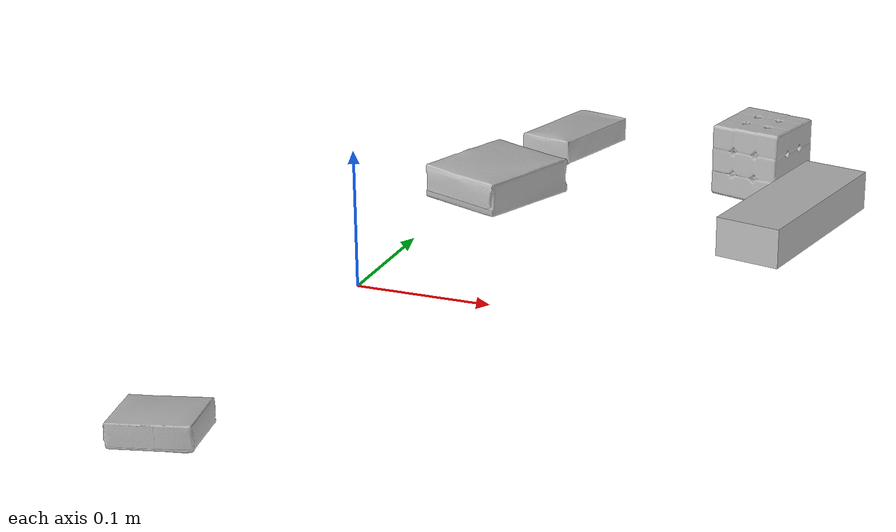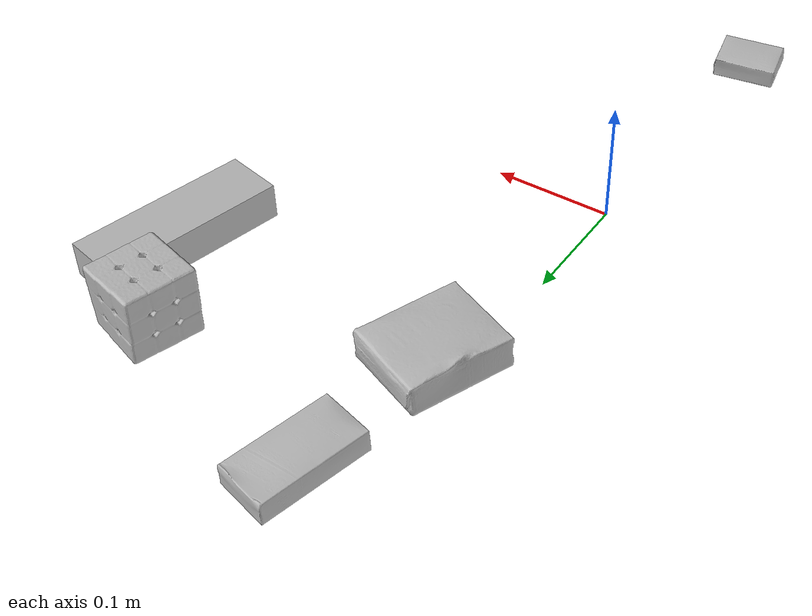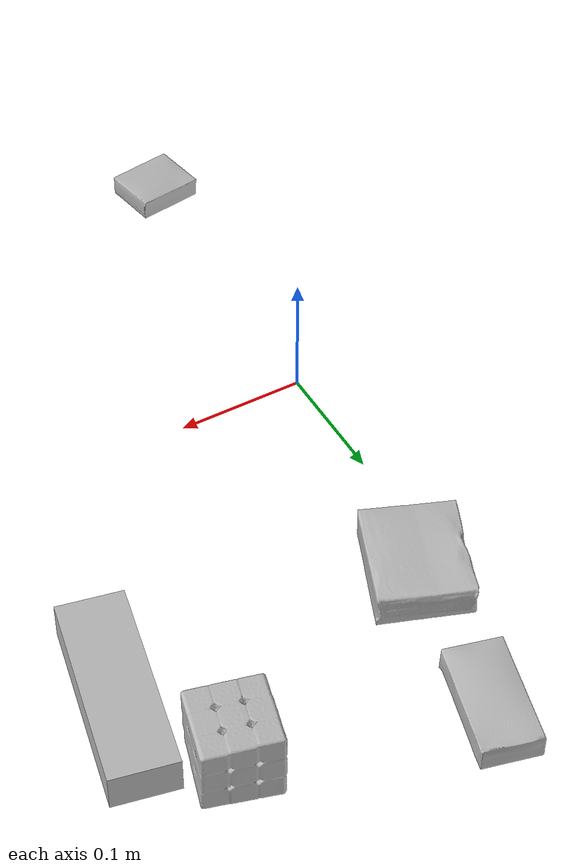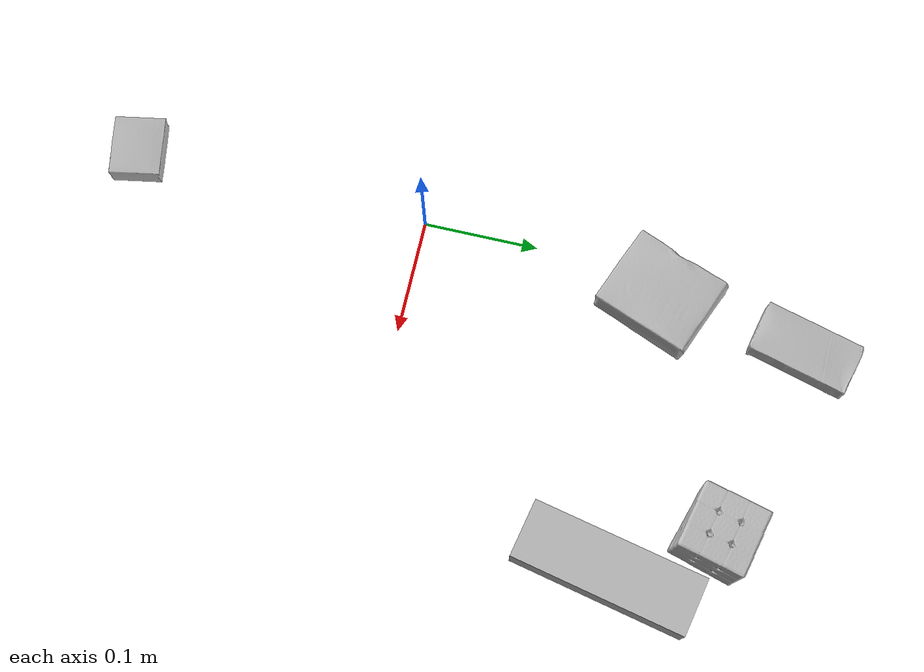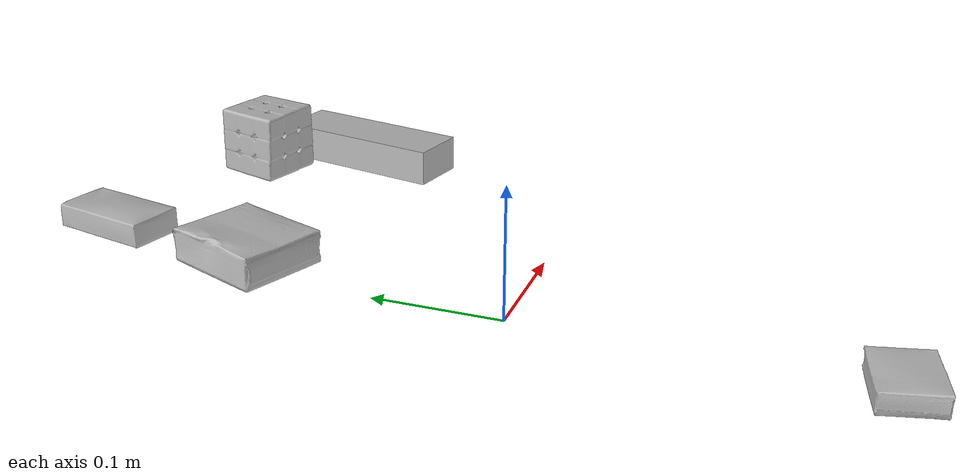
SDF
<sdf version="1.4">
  <world name="default">
    <light name="light1" type="point">
      <pose>0 0 1 0 0 0</pose>
      <diffuse>3 3 3 1</diffuse>
      <specular>3 3 3 1</specular>
    </light>
    <light name="light2" type="point">
      <pose>0 0.5 2 0 0 0</pose>
      <diffuse>1 1 1 1</diffuse>
      <specular>1 1 1 1</specular>
    </light>
    <light name="light3" type="point">
      <pose>0 0.5 2 0 0 0</pose>
      <diffuse>3 3 3 1</diffuse>
      <specular>3 3 3 1</specular>
    </light>
    <scene>
      <ambient>0.7 0.7 0.7</ambient>
    </scene>
    <model name="box1">
      <link name="link_box1">
        <collision name="default">
          <geometry>
            <mesh>
              <uri>model://sugar_box/collision_meshes/collision.obj</uri>
              <scale>0.5 0.5 0.5</scale>
            </mesh>
          </geometry>
          <surface>
            <friction>
              <ode>
                <mu>0.5</mu>
                <mu2>0.5</mu2>
              </ode>
            </friction>
          <contact>
        <ode>
            <max_vel>0</max_vel>
            <min_depth>0.0001</min_depth>
            <kp>1e8</kp>
        </ode>
    </contact></surface>
        </collision>
        <visual name="default">
          <geometry>
            <mesh>
              <uri>model://sugar_box/visual_meshes/visual.dae</uri>
              <scale>0.5 0.5 0.5</scale>
            </mesh>
          </geometry>
        </visual>
        <inertial>
          <mass>0.06211651861667633</mass>
          <pose>0.0005171863595023751 1.9245546354795806e-05 -0.00018182402709499002 -0.00040462630054681676 0.0010506634057476226 0.0026153787889456807</pose>
          <inertia>
            <ixx>1.2938825e-05</ixx>
            <iyy>4.1820942e-05</iyy>
            <izz>5.0064667e-05</izz>
            <ixy>0</ixy>
            <ixz>0</ixz>
            <iyz>0</iyz>
          </inertia>
        </inertial>
      </link>
      <pose>0.04319911450147629 0.338943749666214 0.011399303562939167 0.0007753659889758518 -0.023432589901752253 -1.825760575654854</pose>
    </model>
    <model name="box2">
      <link name="link_box2">
        <collision name="default">
          <geometry>
            <mesh>
              <uri>model://rubiks_cube/collision_meshes/collision.obj</uri>
              <scale>1.0 1.0 1.0</scale>
            </mesh>
          </geometry>
          <surface>
            <friction>
              <ode>
                <mu>0.5</mu>
                <mu2>0.5</mu2>
              </ode>
            </friction>
          <contact>
        <ode>
            <max_vel>0</max_vel>
            <min_depth>0.0001</min_depth>
            <kp>1e8</kp>
        </ode>
    </contact></surface>
        </collision>
        <visual name="default">
          <geometry>
            <mesh>
              <uri>model://rubiks_cube/visual_meshes/visual.dae</uri>
              <scale>1.0 1.0 1.0</scale>
            </mesh>
          </geometry>
        </visual>
        <inertial>
          <mass>0.2700360119342804</mass>
          <pose>2.6721041649580002e-05 5.256967051536776e-05 -7.264316536748083e-06 -0.05467324422766238 -0.0981422115654675 -0.034454566623261795</pose>
          <inertia>
            <ixx>0.00014921304</ixx>
            <iyy>0.00014851718</iyy>
            <izz>0.00015044949</izz>
            <ixy>0</ixy>
            <ixz>0</ixz>
            <iyz>0</iyz>
          </inertia>
        </inertial>
      </link>
      <pose>0.21455666422843933 0.2934655249118805 0.028678985312581062 -3.198326344240708e-06 -8.408355648992684e-07 -0.2545539585687868</pose>
    </model>
    <model name="box3">
      <link name="link_box3">
        <collision name="default">
          <geometry>
            <mesh>
              <uri>model://jenga/collision_meshes/collision.obj</uri>
              <scale>1.0 1.0 1.0</scale>
            </mesh>
          </geometry>
          <surface>
            <friction>
              <ode>
                <mu>0.5</mu>
                <mu2>0.5</mu2>
              </ode>
            </friction>
          <contact>
        <ode>
            <max_vel>0</max_vel>
            <min_depth>0.0001</min_depth>
            <kp>1e8</kp>
        </ode>
    </contact></surface>
        </collision>
        <visual name="default">
          <geometry>
            <mesh>
              <uri>model://jenga/visual_meshes/visual.dae</uri>
              <scale>1.0 1.0 1.0</scale>
            </mesh>
          </geometry>
        </visual>
        <inertial>
          <mass>0.12586519122123718</mass>
          <pose>-2.502855807051674e-07 -0.00010250010382151231 -4.0923401684267446e-05 0.0 -7.342154049184251e-07 0.0</pose>
          <inertia>
            <ixx>3.482995e-05</ixx>
            <iyy>0.0002360068</iyy>
            <izz>0.00025195733</izz>
            <ixy>0</ixy>
            <ixz>0</ixz>
            <iyz>0</iyz>
          </inertia>
        </inertial>
      </link>
      <pose>0.2603490352630615 0.21313945949077606 0.01499999687075615 -2.9250620923583447e-08 5.6160911757623604e-09 -1.7801911813327402</pose>
    </model>
    <model name="box4">
      <link name="link_box4">
        <collision name="default">
          <geometry>
            <mesh>
              <uri>model://gelatin_box/collision_meshes/collision.obj</uri>
              <scale>1.0 1.0 1.0</scale>
            </mesh>
          </geometry>
          <surface>
            <friction>
              <ode>
                <mu>0.5</mu>
                <mu2>0.5</mu2>
              </ode>
            </friction>
          <contact>
        <ode>
            <max_vel>0</max_vel>
            <min_depth>0.0001</min_depth>
            <kp>1e8</kp>
        </ode>
    </contact></surface>
        </collision>
        <visual name="default">
          <geometry>
            <mesh>
              <uri>model://gelatin_box/visual_meshes/visual.dae</uri>
              <scale>1.0 1.0 1.0</scale>
            </mesh>
          </geometry>
        </visual>
        <inertial>
          <mass>0.0925464928150177</mass>
          <pose>0.0004319618456065655 0.00011156871914863586 -0.0003640321083366871 -0.0010503719798216618 -0.004755819622564704 0.01644055760929568</pose>
          <inertia>
            <ixx>6.533027e-05</ixx>
            <iyy>4.6665074e-05</iyy>
            <izz>9.9447236e-05</izz>
            <ixy>0</ixy>
            <ixz>0</ixz>
            <iyz>0</iyz>
          </inertia>
        </inertial>
      </link>
      <pose>0.02311047539114952 0.21142885088920593 0.01516831386834383 0.005596854210630235 -0.007303828853918605 2.7515117451878823</pose>
    </model>
    <model name="box5">
      <link name="link_box5">
        <collision name="default">
          <geometry>
            <mesh>
              <uri>model://pudding_box/collision_meshes/collision.obj</uri>
              <scale>0.5 0.5 0.5</scale>
            </mesh>
          </geometry>
          <surface>
            <friction>
              <ode>
                <mu>0.5</mu>
                <mu2>0.5</mu2>
              </ode>
            </friction>
          <contact>
        <ode>
            <max_vel>0</max_vel>
            <min_depth>0.0001</min_depth>
            <kp>1e8</kp>
        </ode>
    </contact></surface>
        </collision>
        <visual name="default">
          <geometry>
            <mesh>
              <uri>model://pudding_box/visual_meshes/visual.dae</uri>
              <scale>0.5 0.5 0.5</scale>
            </mesh>
          </geometry>
        </visual>
        <inertial>
          <mass>0.0266704261302948</mass>
          <pose>0.00024474109522998333 0.00040339428232982755 -0.0002594413817860186 0.005213101812636465 -0.006603797316727521 0.020079823300208206</pose>
          <inertia>
            <ixx>7.5373864e-06</ixx>
            <iyy>5.0712065e-06</iyy>
            <izz>1.113092e-05</izz>
            <ixy>0</ixy>
            <ixz>0</ixz>
            <iyz>0</iyz>
          </inertia>
        </inertial>
      </link>
      <pose>-0.00897995661944151 -0.260519802570343 0.009862908162176609 0.02234848064629672 -0.011391775569816387 -1.3822358293196935</pose>
    </model>
  <physics type="ode">
      <max_contacts>50</max_contacts>
      <ode>
        <solver>
          <type>quick</type>
          <iters>75</iters>
        </solver>
        <constraints>
          <contact_max_correcting_vel>0</contact_max_correcting_vel>
          <contact_surface_layer>0</contact_surface_layer>
        </constraints>
      </ode>
    </physics></world>
</sdf>
